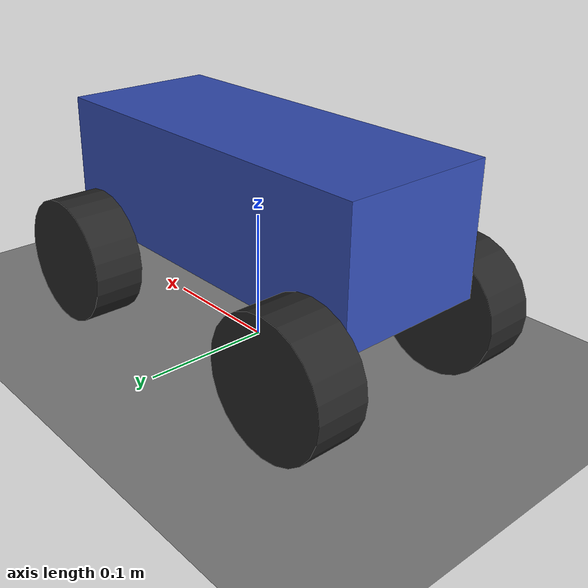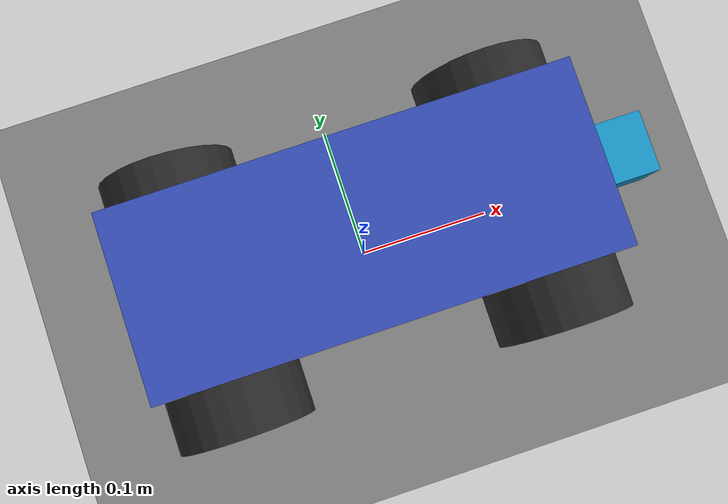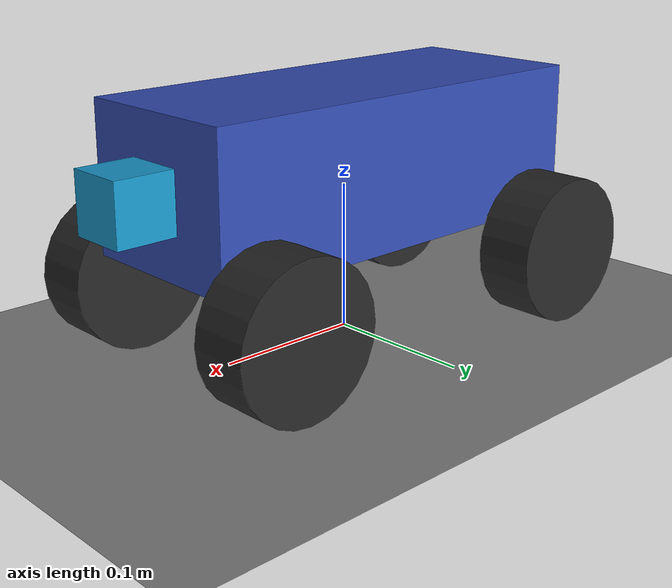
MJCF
<mujoco model="carlike">
  <option timestep="0.005" integrator="implicitfast"/>

  <default>
    <!-- Rolling road wheel: spins about its local y axis. -->
    <default class="wheel">
      <joint type="hinge" axis="0 1 0" damping="0.001"/>
      <geom type="cylinder" size="0.05 0.02" material="wheel"
            friction="1.5 0.02 0.001" mass="0.2"/>
    </default>
    <!-- Steering knuckle: rotates the front wheel about the vertical axis. -->
    <default class="steer">
      <joint type="hinge" axis="0 0 1" limited="true" range="-0.6 0.6" damping="0.1"/>
    </default>
  </default>

  <asset>
    <material name="chassis" rgba=".2 .3 .7 1"/>
    <material name="wheel" rgba=".15 .15 .15 1"/>
    <material name="heading" rgba=".1 .6 .8 1"/>
  </asset>

  <worldbody>
    <light name="light" pos="0 0 4" dir="0 0 -1"/>
    <geom name="floor" pos="0 0 0" size="0 0 .05" type="plane"
          friction="1.0 0.005 0.0001"/>

    <body name="base" pos="0 0 0.05">
      <freejoint name="root"/>
      <geom name="chassis" type="box" pos="0 0 0.07" size="0.15 0.06 0.05"
            material="chassis" mass="2.0"/>
      <!-- Heading marker so forward (+x) is visible. -->
      <geom name="nose" type="box" pos="0.17 0 0.07" size="0.02 0.02 0.02"
            material="heading" mass="0.001"/>
      <!-- Heavy, invisible ballast high in the chassis: raises the centre of mass
           without showing or colliding (contype/conaffinity 0, fully transparent). -->
      <geom name="ballast" type="sphere" pos="0 0 0.14" size="0.03" mass="3.0"
            contype="0" conaffinity="0" rgba="0 0 0 0"/>

      <!-- Front axle: each wheel hangs off a steering knuckle (driven by the
           steering actuators); the wheels themselves roll passively. -->
      <body name="front_left_steer" pos="0.12 0.08 0">
        <inertial pos="0 0 0" mass="0.05" diaginertia="1e-4 1e-4 1e-4"/>
        <joint name="front_left_steer" class="steer"/>
        <body name="front_left_wheel" pos="0 0 0">
          <joint name="front_left_wheel" class="wheel"/>
          <geom name="front_left_wheel" class="wheel" euler="90 0 0"/>
        </body>
      </body>
      <body name="front_right_steer" pos="0.12 -0.08 0">
        <inertial pos="0 0 0" mass="0.05" diaginertia="1e-4 1e-4 1e-4"/>
        <joint name="front_right_steer" class="steer"/>
        <body name="front_right_wheel" pos="0 0 0">
          <joint name="front_right_wheel" class="wheel"/>
          <geom name="front_right_wheel" class="wheel" euler="90 0 0"/>
        </body>
      </body>

      <!-- Rear axle: driven wheels, fixed straight ahead. -->
      <body name="rear_left_wheel" pos="-0.12 0.08 0">
        <joint name="rear_left_wheel" class="wheel"/>
        <geom name="rear_left_wheel" class="wheel" euler="90 0 0"/>
      </body>
      <body name="rear_right_wheel" pos="-0.12 -0.08 0">
        <joint name="rear_right_wheel" class="wheel"/>
        <geom name="rear_right_wheel" class="wheel" euler="90 0 0"/>
      </body>
    </body>
  </worldbody>

  <actuator>
    <position name="front_left_steer" joint="front_left_steer" kp="10"
              ctrllimited="true" ctrlrange="-0.6 0.6"/>
    <position name="front_right_steer" joint="front_right_steer" kp="10"
              ctrllimited="true" ctrlrange="-0.6 0.6"/>
    <motor name="rear_left_wheel" joint="rear_left_wheel" gear="1"
           ctrllimited="true" ctrlrange="-2 2"/>
    <motor name="rear_right_wheel" joint="rear_right_wheel" gear="1"
           ctrllimited="true" ctrlrange="-2 2"/>
  </actuator>
</mujoco>
